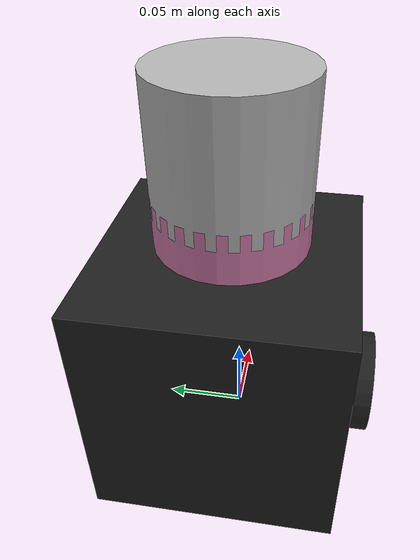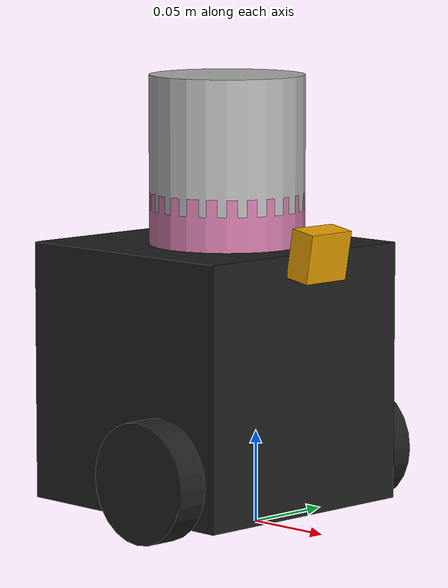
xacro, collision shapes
<?xml version="1.0" ?>
<robot name="turtlebot3_my_burger" xmlns:xacro="http://ros.org/wiki/xacro">
    <xacro:include filename="$(find turtlebot3_description)/urdf/common_properties.xacro"/>
    <xacro:include filename="$(find turtlebot3_description)/urdf/turtlebot3_my_burger.gazebo.xacro"/>

    <link name="base_footprint"/>

    <joint name="base_joint" type="fixed">
        <parent link="base_footprint"/>
        <child link="base_link"/>
        <origin xyz="0.0 0.0 0.010" rpy="0 0 0"/>
    </joint>

    <link name="base_link">
        <visual>
            <origin xyz="-0.032 0 0.0" rpy="0 0 0"/>
            <geometry>
                <mesh filename="package://turtlebot3_description/meshes/bases/burger_base.stl"
                      scale="0.001 0.001 0.001"/>
            </geometry>
            <material name="light_black"/>
        </visual>

        <collision>
            <origin xyz="-0.032 0 0.070" rpy="0 0 0"/>
            <geometry>
                <box size="0.140 0.140 0.143"/>
            </geometry>
        </collision>

        <inertial>
            <origin xyz="0 0 0" rpy="0 0 0"/>
            <mass value="8.2573504e-01"/>
            <inertia ixx="2.2124416e-03" ixy="-1.2294101e-05" ixz="3.4938785e-05"
                     iyy="2.1193702e-03" iyz="-5.0120904e-06"
                     izz="2.0064271e-03"/>
        </inertial>
    </link>

    <joint name="wheel_left_joint" type="continuous">
        <parent link="base_link"/>
        <child link="wheel_left_link"/>
        <origin xyz="0.0 0.08 0.023" rpy="-1.57 0 0"/>
        <axis xyz="0 0 1"/>
    </joint>

    <link name="wheel_left_link">
        <visual>
            <origin xyz="0 0 0" rpy="1.57 0 0"/>
            <geometry>
                <mesh filename="package://turtlebot3_description/meshes/wheels/left_tire.stl"
                      scale="0.001 0.001 0.001"/>
            </geometry>
            <material name="dark"/>
        </visual>

        <collision>
            <origin xyz="0 0 0" rpy="0 0 0"/>
            <geometry>
                <cylinder length="0.018" radius="0.033"/>
            </geometry>
        </collision>

        <inertial>
            <origin xyz="0 0 0"/>
            <mass value="2.8498940e-02"/>
            <inertia ixx="1.1175580e-05" ixy="-4.2369783e-11" ixz="-5.9381719e-09"
                     iyy="1.1192413e-05" iyz="-1.4400107e-11"
                     izz="2.0712558e-05"/>
        </inertial>
    </link>

    <joint name="wheel_right_joint" type="continuous">
        <parent link="base_link"/>
        <child link="wheel_right_link"/>
        <origin xyz="0.0 -0.080 0.023" rpy="-1.57 0 0"/>
        <axis xyz="0 0 1"/>
    </joint>

    <link name="wheel_right_link">
        <visual>
            <origin xyz="0 0 0" rpy="1.57 0 0"/>
            <geometry>
                <mesh filename="package://turtlebot3_description/meshes/wheels/right_tire.stl"
                      scale="0.001 0.001 0.001"/>
            </geometry>
            <material name="dark"/>
        </visual>

        <collision>
            <origin xyz="0 0 0" rpy="0 0 0"/>
            <geometry>
                <cylinder length="0.018" radius="0.033"/>
            </geometry>
        </collision>

        <inertial>
            <origin xyz="0 0 0"/>
            <mass value="2.8498940e-02"/>
            <inertia ixx="1.1175580e-05" ixy="-4.2369783e-11" ixz="-5.9381719e-09"
                     iyy="1.1192413e-05" iyz="-1.4400107e-11"
                     izz="2.0712558e-05"/>
        </inertial>
    </link>

    <joint name="caster_back_joint" type="fixed">
        <parent link="base_link"/>
        <child link="caster_back_link"/>
        <origin xyz="-0.081 0 -0.004" rpy="-1.57 0 0"/>
    </joint>

    <link name="caster_back_link">
        <collision>
            <origin xyz="0 0.001 0" rpy="0 0 0"/>
            <geometry>
                <box size="0.030 0.009 0.020"/>
            </geometry>
        </collision>

        <inertial>
            <origin xyz="0 0 0"/>
            <mass value="0.005"/>
            <inertia ixx="0.001" ixy="0.0" ixz="0.0"
                     iyy="0.001" iyz="0.0"
                     izz="0.001"/>
        </inertial>
    </link>

    <joint name="imu_joint" type="fixed">
        <parent link="base_link"/>
        <child link="imu_link"/>
        <origin xyz="-0.032 0 0.068" rpy="0 0 0"/>
    </joint>

    <link name="imu_link"/>

    <joint name="scan_joint" type="fixed">
        <parent link="base_link"/>
        <child link="base_lidar"/>
        <origin xyz="-0.022519 0 0.140612" rpy="0 0 0"/>
    </joint>

    <link name="base_lidar">
        <origin xyz="0 0 0.029335" rpy="0 0 0"/>
        <inertial>
            <mass value="0.02"/>
            <inertia ixx="0.0001087473" ixy="0" ixz="0" iyy="0.0001087473" iyz="0" izz="0.0001092437"/>
        </inertial>

        <collision name="base_collision">
            <geometry>
                <cylinder radius="0.04267" length="0.05867"/>
            </geometry>
        </collision>

        <visual name="base_visual">
            <pose>0 0 -0.029335 0 0 0</pose>
            <geometry>
                <mesh filename="model://velodyne_hdl32/meshes/velodyne_base.dae"/>
            </geometry>
        </visual>
    </link>

    <link name="top_lidar">
        <origin rpy="0 0 0" xyz="0 0 0.095455"/>

        <inertial>
            <mass value="0.01"/>
            <inertia ixx="0.0000090623" izz="0.000091036" iyy="0.0000090623" iyz="0" ixz="0" ixy="0"/>
        </inertial>

        <collision name="top_collision">
            <geometry>
                <cylinder length="0.07357" radius="0.04267"/>
            </geometry>
        </collision>

        <visual name="top_visual">
            <pose>0 0 -0.0376785 0 0 1.5707</pose>
            <geometry>
                <mesh filename="model://velodyne_hdl32/meshes/velodyne_top.dae"/>
            </geometry>
        </visual>
    </link>

    <joint type="revolute" name="velodyne_joint">
        <origin xyz="0 0 0.056785" rpy="0 0 1.5707"/>
        <parent link="base_lidar"/>
        <child link="top_lidar"/>
        <axis xyz="0 0 1"/>
        <limit effort="1" velocity="1000000" lower="-10000000000000000" upper="10000000000000000"/>
    </joint>

    <joint name="camera_joint" type="fixed">
        <origin xyz="0.040 -0.011 0.130" rpy="0 0.174 0"/>
        <parent link="base_link"/>
        <child link="camera_link"/>
    </joint>

    <link name="camera_link">
        <collision>
            <origin xyz="0.005 0.011 0.013" rpy="0 0 0"/>
            <geometry>
                <box size="0.015 0.030 0.027"/>
            </geometry>
        </collision>
    </link>

    <joint name="camera_rgb_joint" type="fixed">
        <origin xyz="0.003 0.011 0.009" rpy="0 0 0"/>
        <parent link="camera_link"/>
        <child link="camera_rgb_frame"/>
    </joint>
    <link name="camera_rgb_frame"/>

    <joint name="camera_rgb_optical_joint" type="fixed">
        <origin xyz="0 0 0" rpy="-1.57 0 -1.57"/>
        <parent link="camera_rgb_frame"/>
        <child link="camera_rgb_optical_frame"/>
    </joint>
    <link name="camera_rgb_optical_frame"/>

</robot>
